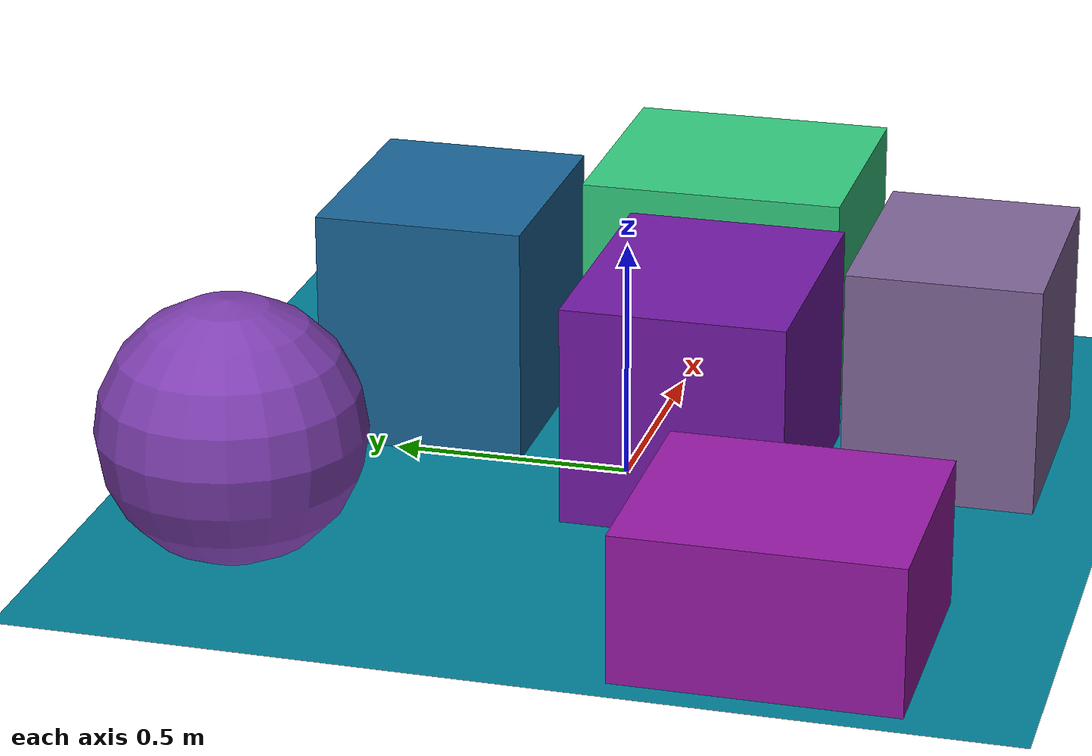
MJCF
<mujoco>
   <asset>
<texture type="skybox" builtin="gradient" rgb1="0.9 0.6 0.8" rgb2="0.4 0.2 0.1" width="256" height="256"/>
<texture name="flat_0" builtin="flat" rgb1="0.1 0.4 0.6" rgb2="0.1 0.4 0.6"  width="200" height="200"/>
<texture name="gradient_1" builtin="gradient" rgb1="0.9 0.1 0.8" rgb2="0.1 0.4 0.6" width="200" height="200"/>
<texture name="gradient_2" builtin="gradient" rgb1="0.9 0.7 0.5" rgb2="0.1 0.1 0.7" width="200" height="200"/>
<texture name="gradient_3" builtin="gradient" rgb1="0.5 0.0 0.5" rgb2="0.7 0.2 0.8" width="200" height="200"/>
<texture name="checker_4" builtin="checker" type="2d" rgb1="0.2 0.9 0.6" rgb2="0.2 0.7 0.4" width="200" height="200"/>
<texture name="checker_5" builtin="checker" type="2d" rgb1="0.1 0.2 0.5" rgb2="0.8 0.0 0.8" width="200" height="200"/><material name="flat_0_mat" reflectance="0" texture="flat_0" texuniform="true"/>
<material name="gradient_1_mat" reflectance="0" texture="gradient_1" texuniform="true"/>
<material name="gradient_2_mat" reflectance="0" texture="gradient_2" texuniform="true"/>
<material name="gradient_3_mat" reflectance="0" texture="gradient_3" texuniform="true"/>
<material name="checker_4_mat" reflectance="0" texrepeat="7 7" texture="checker_4" texuniform="false" />
<material name="checker_5_mat" reflectance="0" texrepeat="4 4" texture="checker_5" texuniform="false" />
   </asset>

   <worldbody>
      <light diffuse=".9 .9 .9" pos="0 0 3" dir="0 0 -1"/>
     <geom type="plane" size="1 1 0.1" rgba="0.0 0.5 0.6 1"/>
<geom type="box" pos="0.26 0.45 0.25" size="0.26 0.22 0.25" material="flat_0_mat" />
<geom type="sphere" pos="-0.59 0.65 0.27" size="0.27 0.27 0.27" material="gradient_1_mat" />
<geom type="box" pos="0.26 -0.65 0.24" size="0.26 0.2 0.24" material="gradient_2_mat" />
<geom type="box" pos="-0.7 -0.48 0.15" size="0.25 0.28 0.15" material="gradient_3_mat" />
<geom type="box" pos="0.66 -0.08 0.24" size="0.27 0.28 0.24" material="checker_4_mat" />
<geom type="box" pos="0.01 -0.16 0.23" size="0.29 0.23 0.23" material="checker_5_mat" /><camera euler="60 0 180" fovy="60" name="camera_a" pos="0 -1.5 1"></camera>   </worldbody>
</mujoco>
